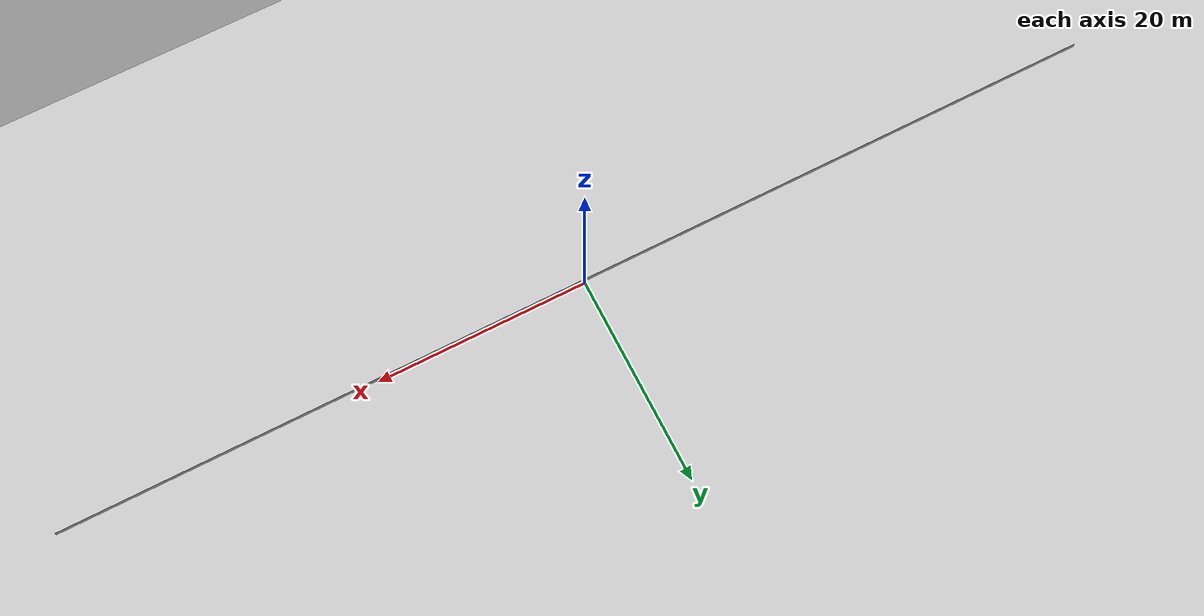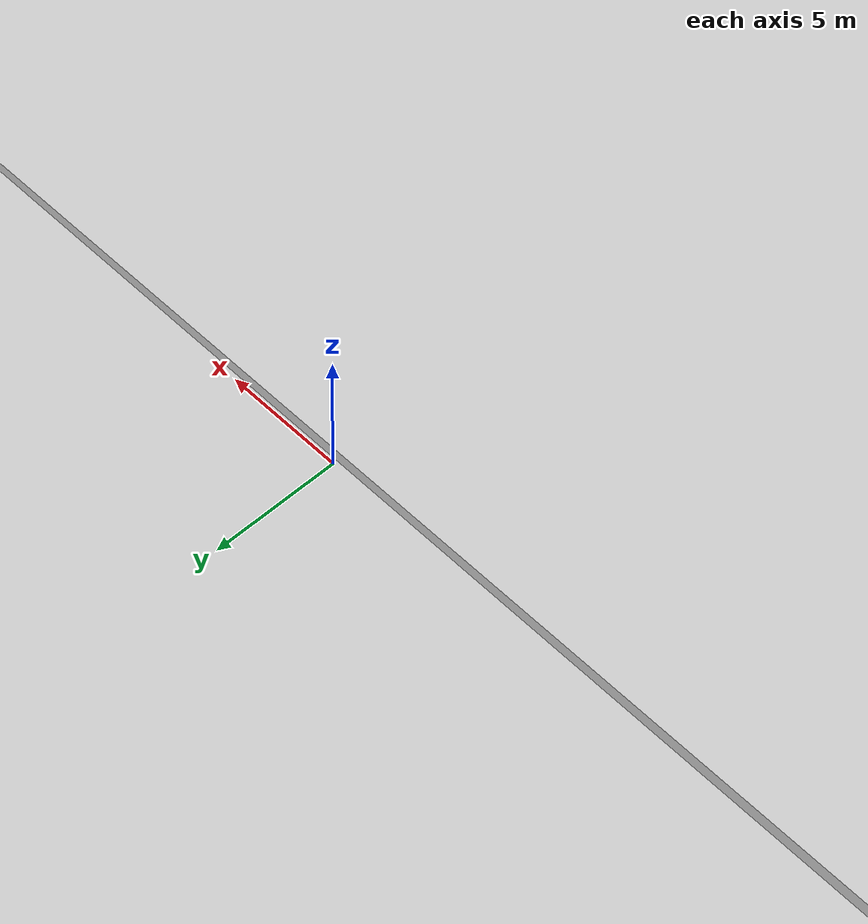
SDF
<?xml version="1.0" ?>

<sdf version="1.9">
  <world name="control_laboratory_with_nav_car">
    <!-- Physics definition -->
    <physics name="1ms" type="ignored">
      <max_step_size>0.001</max_step_size>
      <real_time_factor>1.0</real_time_factor>
      <dart>
        <solver>
          <solver_type>pgs</solver_type>
        </solver>
      </dart>
      <ode>
        <solver>
          <friction_model>cone_model</friction_model>
        </solver>
      </ode>
    </physics>

    <!-- Physics plugin -->
    <plugin
      filename="libignition-gazebo-physics-system.so"
      name="ignition::gazebo::systems::Physics">
    </plugin>

    <!-- Sensors plugin -->
    <plugin
      filename="ignition-gazebo-sensors-system"
      name="ignition::gazebo::systems::Sensors">
      <render_engine>ogre</render_engine>
    </plugin>

    <!-- IMU plugin -->
    <plugin
      filename="libignition-gazebo-imu-system.so"
      name="ignition::gazebo::systems::Imu">
    </plugin>

    <!-- Creating, moving and deleting models plugin -->
    <plugin
      filename="libignition-gazebo-user-commands-system.so"
      name="ignition::gazebo::systems::UserCommands">
    </plugin>

    <!-- Shows the world scene -->
    <plugin
      filename="libignition-gazebo-scene-broadcaster-system.so"
      name="ignition::gazebo::systems::SceneBroadcaster">
    </plugin>

    <!-- Light definition -->
    <light type="directional" name="sun">
      <cast_shadows>true</cast_shadows>
      <pose>0 0 10 0 0 0</pose>
      <diffuse>0.8 0.8 0.8 1</diffuse>
      <specular>0.2 0.2 0.2 1</specular>
      <attenuation>
        <range>1000</range>
        <constant>0.9</constant>
        <linear>0.01</linear>
        <quadratic>0.001</quadratic>
      </attenuation>
      <direction>0.5 -0.1 -0.9</direction>
    </light>

    <!-- Ground plane -->
    <model name="ground_plane">
      <static>true</static>
      <link name="link">
        <collision name="collision">
          <geometry>
            <plane>
              <normal>0 0 1</normal>
            </plane>
          </geometry>
        </collision>
        <visual name="visual">
          <geometry>
            <plane>
              <normal>0 0 1</normal>
              <size>100 100</size>
            </plane>
          </geometry>
          <material>
            <ambient>0.8 0.8 0.8 1</ambient>
            <diffuse>0.8 0.8 0.8 1</diffuse>
            <specular>0.8 0.8 0.8 1</specular>
          </material>
        </visual>
      </link>
    </model>

    <!-- Wall plane -->
    <model name="wall_plane">
      <pose>0 -0.2 0 0 0 0</pose>
      <static>true</static>
      <link name="link">
        <collision name="collision">
          <geometry>
            <plane>
              <normal>0 1 0</normal>
            </plane>
          </geometry>
        </collision>
        <visual name="visual">
          <geometry>
            <plane>
              <normal>0 1 0</normal>
              <size>100 1</size>
            </plane>
          </geometry>
          <material>
            <ambient>0.8 0.8 0.8 1</ambient>
            <diffuse>0.8 0.8 0.8 1</diffuse>
            <specular>0.8 0.8 0.8 1</specular>
          </material>
        </visual>
      </link>
    </model>
  </world>
</sdf>
